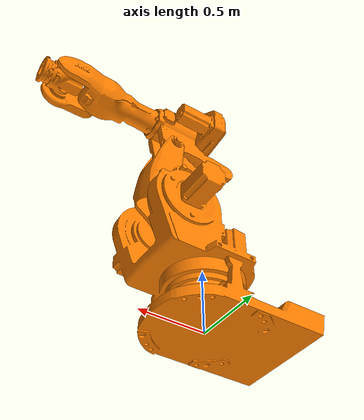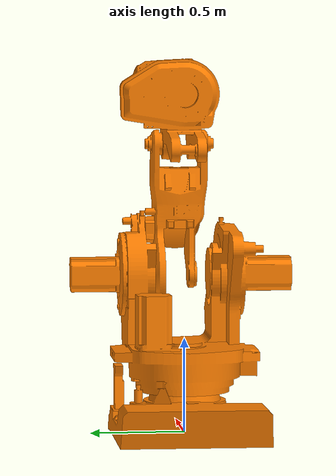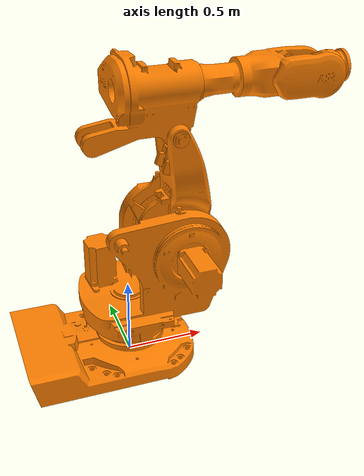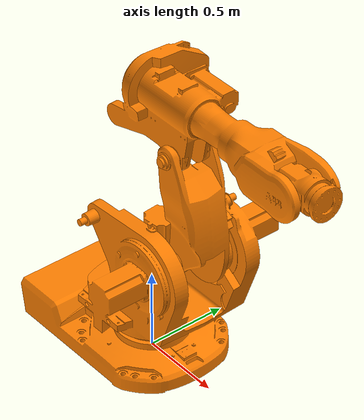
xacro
<?xml version="1.0"?>
<robot xmlns:xacro="http://www.ros.org/wiki/xacro" name="abb_irb6660">
    <xacro:arg name="initial_positions_file" default="initial_positions.yaml" />

    <!-- Import abb_irb6660 urdf file -->
    <xacro:include filename="$(find abb_irb6660_support)/urdf/irb6660.urdf" />

    <!-- Import control_xacro -->
    <xacro:include filename="abb_irb6660.ros2_control.xacro" />

    <xacro:abb_irb6660_ros2_control name="FakeSystem" initial_positions_file="$(arg initial_positions_file)"/>

</robot>

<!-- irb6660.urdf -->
<robot name="abb_irb6660">
<!-- link list -->
  <link name="base_link">
    <collision name="collision">
      <geometry>
        <mesh filename="package://abb_irb6660_support/meshes/collision/base_link.stl" scale="0.001 0.001 0.001"/>
      </geometry>
    </collision>
    <visual name="visual">
      <geometry>
        <mesh filename="package://abb_irb6660_support/meshes/visual/base_link.stl" scale="0.001 0.001 0.001"/>
      </geometry>
      <material name="orange">
        <color rgba="1 0.5 0 1"/>
      </material>
    </visual>
  </link>
  <link name="link_1">
    <collision name="collision">
      <geometry>
        <mesh filename="package://abb_irb6660_support/meshes/collision/link_1.stl" scale="0.001 0.001 0.001"/>
      </geometry>
    </collision>
    <visual name="visual">
      <geometry>
        <mesh filename="package://abb_irb6660_support/meshes/visual/link_1.stl" scale="0.001 0.001 0.001"/>
      </geometry>
      <material name="orange"/>
    </visual>
  </link>
  <link name="link_2">
    <collision name="collision">
      <geometry>
        <mesh filename="package://abb_irb6660_support/meshes/collision/link_2.stl" scale="0.001 0.001 0.001"/>
      </geometry>
    </collision>
    <visual name="visual">
      <geometry>
        <mesh filename="package://abb_irb6660_support/meshes/visual/link_2.stl" scale="0.001 0.001 0.001"/>
      </geometry>
      <material name="orange"/>
    </visual>
  </link>
  <link name="link_3">
    <collision name="collision">
      <geometry>
        <mesh filename="package://abb_irb6660_support/meshes/collision/link_3.stl" scale="0.001 0.001 0.001"/>
      </geometry>
    </collision>
    <visual name="visual">
      <geometry>
        <mesh filename="package://abb_irb6660_support/meshes/visual/link_3.stl" scale="0.001 0.001 0.001"/>
      </geometry>
      <material name="orange"/>
    </visual>
  </link>
  <link name="link_4">
    <collision name="collision">
      <geometry>
        <mesh filename="package://abb_irb6660_support/meshes/collision/link_4.stl" scale="0.001 0.001 0.001"/>
      </geometry>
    </collision>
    <visual name="visual">
      <geometry>
        <mesh filename="package://abb_irb6660_support/meshes/visual/link_4.stl" scale="0.001 0.001 0.001"/>
      </geometry>
      <material name="orange"/>
    </visual>
  </link>
  <link name="link_5">
    <collision name="collision">
      <geometry>
        <mesh filename="package://abb_irb6660_support/meshes/collision/link_5.stl" scale="0.001 0.001 0.001"/>
      </geometry>
    </collision>
    <visual name="visual">
      <geometry>
        <mesh filename="package://abb_irb6660_support/meshes/visual/link_5.stl" scale="0.001 0.001 0.001"/>
      </geometry>
      <material name="orange"/>
    </visual>
  </link>
  <link name="link_6">
    <collision name="collision">
      <geometry>
        <mesh filename="package://abb_irb6660_support/meshes/collision/link_6.stl" scale="0.001 0.001 0.001"/>
      </geometry>
    </collision>
    <visual name="visual">
      <geometry>
        <mesh filename="package://abb_irb6660_support/meshes/visual/link_6.stl" scale="0.001 0.001 0.001"/>
      </geometry>
      <material name="orange"/>
    </visual>
  </link>
  <!-- joint list -->
  <joint name="joint_1" type="revolute">
    <origin rpy="0 0 0" xyz="0 0 0.214"/>
    <axis xyz="0 0 1"/>
    <parent link="base_link"/>
    <child link="link_1"/>
    <limit effort="0" lower="-3.142" upper="3.142" velocity="2.269"/>
  </joint>
  <joint name="joint_2" type="revolute">
    <origin rpy="0 0 0" xyz="0.3 0 0.600"/>
    <axis xyz="0 1 0"/>
    <parent link="link_1"/>
    <child link="link_2"/>
    <limit effort="0" lower="-0.733" upper="1.484" velocity="2.269"/>
  </joint>
  <joint name="joint_3" type="revolute">
    <origin rpy="0 0 0" xyz="0 0 0.7"/>
    <axis xyz="0 1 0"/>
    <parent link="link_2"/>
    <child link="link_3"/>
    <limit effort="0" lower="-0.349" upper="2.094" velocity="2.269"/>
  </joint>
  <joint name="joint_4" type="revolute">
    <origin rpy="0 0 0" xyz="0 0 0.28"/>
    <axis xyz="1 0 0"/>
    <parent link="link_3"/>
    <child link="link_4"/>
    <limit effort="0" lower="-5.236" upper="5.236" velocity="2.618"/>
  </joint>
  <joint name="joint_5" type="revolute">
    <origin rpy="0 0 0" xyz="0.893 0 0 "/>
    <axis xyz="0 1 0"/>
    <parent link="link_4"/>
    <child link="link_5"/>
    <limit effort="0" lower="-2.094" upper="2.094" velocity="2.0944"/>
  </joint>
  <joint name="joint_6" type="revolute">
    <origin rpy="0 0 0" xyz="0.154 0 0 "/>
    <axis xyz="1 0 0"/>
    <parent link="link_5"/>
    <child link="link_6"/>
    <limit effort="0" lower="-6.283" upper="6.283" velocity="3.3161"/>
  </joint>
  <!-- ROS base_link to ABB World Coordinates transform -->
</robot>
